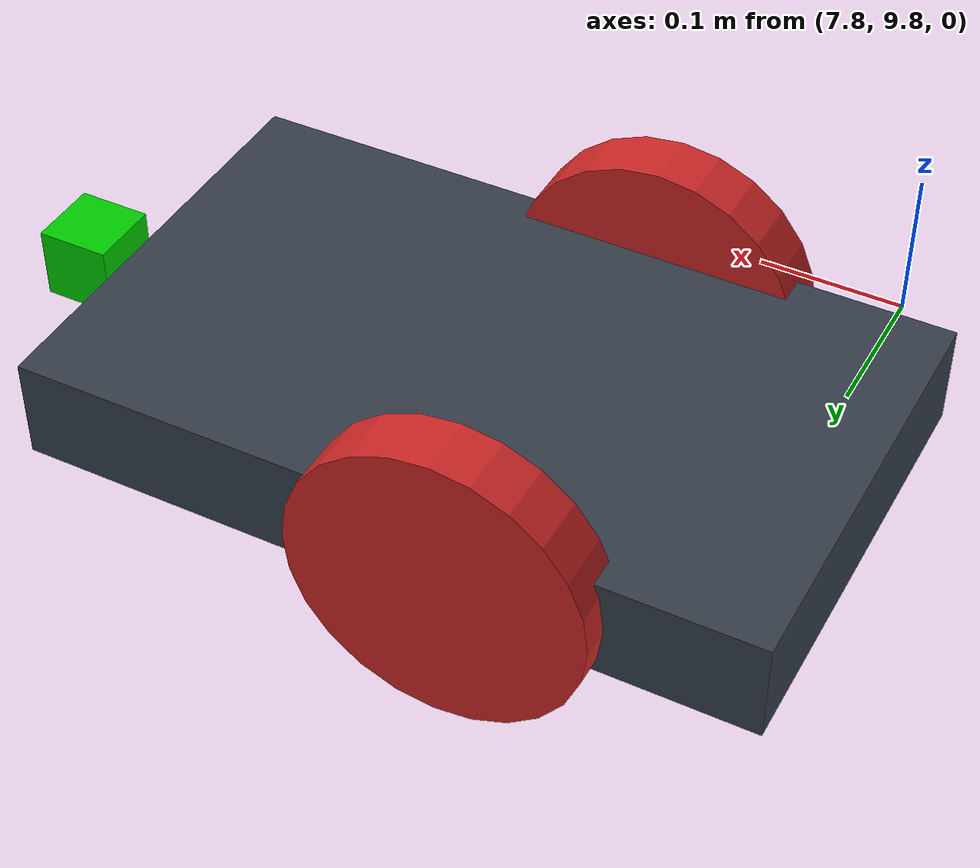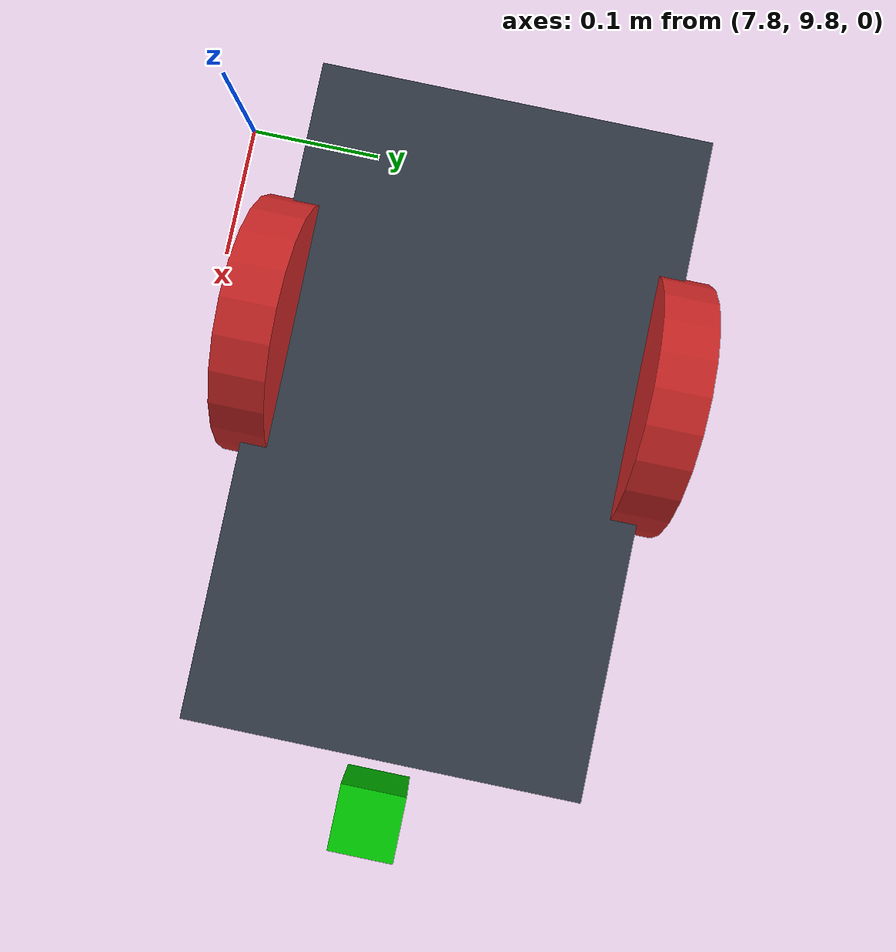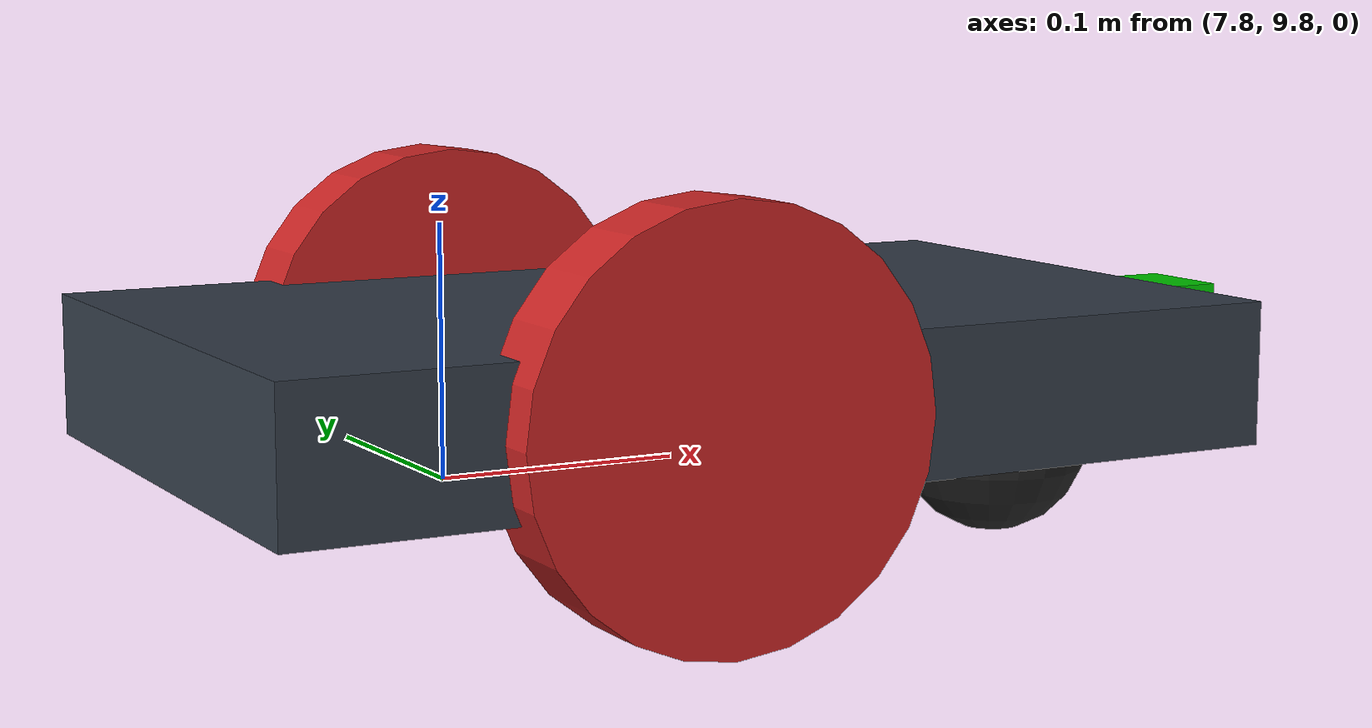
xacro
<?xml version="1.0" ?>

<robot name="follow" xmlns:xacro="https://www.ros.org/wiki/xacro" >
  <xacro:property name="cameraSize" value="0.05"/>
  <xacro:property name="cameraMass" value="0.1"/>

  <material name="black">
    <color rgba="0.0 0.0 0.0 1.0"/>
  </material>
  <material name="blue">
    <color rgba="0.203125 0.23828125 0.28515625 1.0"/>
  </material>
  <material name="green">
    <color rgba="0.0 0.8 0.0 1.0"/>
  </material>
  <material name="grey">
    <color rgba="0.2 0.2 0.2 1.0"/>
  </material>
  <material name="orange">
    <color rgba="1.0 0.423529411765 0.0392156862745 1.0"/>
  </material>
  <material name="brown">
    <color rgba="0.870588235294 0.811764705882 0.764705882353 1.0"/>
  </material>
  <material name="red">
    <color rgba="0.80078125 0.12890625 0.1328125 1.0"/>
  </material>
  <material name="white">
    <color rgba="1.0 1.0 1.0 1.0"/>
  </material>

  <gazebo reference="link_chassis">
    <material>Gazebo/black</material>
  </gazebo>
  <gazebo reference="link_left_wheel">
    <material>Gazebo/Red</material>
  </gazebo>
  <gazebo reference="link_right_wheel">
    <material>Gazebo/Red</material>
  </gazebo>

  <link name="link_chassis">
    <!-- pose and inertial -->
    <pose>0 0 0.1 0 0 0</pose>

    <inertial>
      <mass value="5"/>
      <origin rpy="0 0 0" xyz="8 10 0.1"/>
      <inertia ixx="0.0395416666667" ixy="0" ixz="0" iyy="0.106208333333" iyz="0" izz="0.106208333333"/>
    </inertial>

    <collision name="collision_chassis">
      <geometry>
        <box size="0.5 0.3 0.07"/>
      </geometry>
    </collision>

    <visual>
      <origin rpy="0 0 0" xyz="8 10 0.0"/>
      <geometry>
        <box size="0.5 0.3 0.07"/>
      </geometry>
      <material name="blue"/>
    </visual>

    <!-- caster front -->
    <collision name="caster_front_collision">
      <origin rpy=" 0 0 0" xyz="8.35 10 -0.05"/>
      <geometry>
        <sphere radius="0.05"/>
      </geometry>
      <surface>
        <friction>
          <ode>
            <mu>0</mu>
            <mu2>0</mu2>
            <slip1>1.0</slip1>
            <slip2>1.0</slip2>
          </ode>
        </friction>
      </surface>
    </collision>
    <visual name="caster_front_visual">
      <origin rpy=" 0 0 0" xyz="8.2 10 -0.05"/>
      <geometry>
        <sphere radius="0.05"/>
      </geometry>
    </visual>
    </link>

  <!-- Create wheel right -->

  <link name="link_right_wheel">
    <inertial>
      <mass value="0.2"/>
      <origin rpy="0 1.5707 1.5707" xyz="0 0 0"/>
      <inertia ixx="0.00052666666" ixy="0" ixz="0" iyy="0.00052666666" iyz="0" izz="0.001"/>
    </inertial>

    <collision name="link_right_wheel_collision">
      <origin rpy="0 1.5707 1.5707" xyz="0 0 0" />
      <geometry>
        <cylinder length="0.04" radius="0.1"/>
      </geometry>
    </collision>

    <visual name="link_right_wheel_visual">
      <origin rpy="0 1.5707 1.5707" xyz="0 0 0"/>
      <geometry>
        <cylinder length="0.04" radius="0.1"/>
      </geometry>
    </visual>

  </link>

  <!--   Joint for right wheel  -->
  <joint name="joint_right_wheel" type="continuous">
    <origin rpy="0 0 0" xyz="7.95 10.15 0"/>
    <child link="link_right_wheel" />
    <parent link="link_chassis"/>
    <axis rpy="0 0 0" xyz="0 1 0"/>
    <limit effort="10000" velocity="1000"/>
    <joint_properties damping="1.0" friction="1.0" />
  </joint>

  <!-- Left Wheel link -->

  <link name="link_left_wheel">
    <inertial>
      <mass value="0.2"/>
      <origin rpy="0 1.5707 1.5707" xyz="0 0 0"/>
      <inertia ixx="0.00052666666" ixy="0" ixz="0" iyy="0.00052666666" iyz="0" izz="0.001"/>
    </inertial>

    <collision name="link_left_wheel_collision">
      <origin rpy="0 1.5707 1.5707" xyz="0 0 0" />
      <geometry>
        <cylinder length="0.04" radius="0.1"/>
      </geometry>
    </collision>

    <visual name="link_left_wheel_visual">
      <origin rpy="0 1.5707 1.5707" xyz="0 0 0"/>
      <geometry>
        <cylinder length="0.04" radius="0.1"/>
      </geometry>
    </visual>

  </link>

  <!--   Joint for right wheel  -->
  <joint name="joint_left_wheel" type="continuous">
    <origin rpy="0 0 0" xyz="7.95 9.85 0"/>
    <child link="link_left_wheel" />
    <parent link="link_chassis"/>
    <axis rpy="0 0 0" xyz="0 1 0"/>
    <limit effort="10000" velocity="1000"/>
    <joint_properties damping="1.0" friction="1.0" />
  </joint>

  <gazebo>
    <plugin filename="libgazebo_ros_diff_drive.so" name="differential_drive_controller">
      <alwaysOn>true</alwaysOn>
      <updateRate>20</updateRate>
      <leftJoint>joint_left_wheel</leftJoint>
      <rightJoint>joint_right_wheel</rightJoint>
      <wheelSeparation>0.4</wheelSeparation>
      <wheelDiameter>0.2</wheelDiameter>
      <torque>0.1</torque>
      <commandTopic>cmd_vel1</commandTopic>
      <odometryTopic>odom1</odometryTopic>
      <odometryFrame>odom1</odometryFrame>
      <robotBaseFrame>link_chassis</robotBaseFrame>
    </plugin>
  </gazebo>

  <link name="camera">
    <collision>
      <origin xyz="0 0 0" rpy="0 0 0"/>
      <geometry>
        <box size="${cameraSize} ${cameraSize} ${cameraSize}"/>
      </geometry>
    </collision>

    <visual>
      <origin xyz="0 0 0" rpy="0 0 0"/>
      <geometry>
        <box size="${cameraSize} ${cameraSize} ${cameraSize}"/>
      </geometry>
      <material name="green"/>
    </visual>

    <inertial>
      <mass value="${cameraMass}" />
      <origin xyz="0 0 0" rpy="0 0 0"/>
      <box_inertia m="${cameraMass}" x="${cameraSize}" y="${cameraSize}" z="${cameraSize}" />
      <inertia ixx="1e-6" ixy="0" ixz="0" iyy="1e-6" iyz="0" izz="1e-6" />
    </inertial>
  </link>

  <joint name="camera_joint" type="fixed">
    <axis xyz="1 0.0 0.0" />
    <origin xyz="8.3 10.0 0" rpy="0 0 0"/>
    <parent link="link_chassis"/>
    <child link="camera"/>
  </joint>

  <gazebo reference="camera">
    <material>Gazebo/Green</material>
    <sensor type="camera" name="camera1">
      <update_rate>30.0</update_rate>
      <camera name="head">
        <horizontal_fov>1.3962634</horizontal_fov>
        <image>
          <width>800</width>
          <height>800</height>
          <format>R8G8B8</format>
        </image>
        <clip>
          <near>0.02</near>
          <far>300</far>
        </clip>
  <save enabled="true">
      <path>mybot_gazebo/Images</path>
    </save>
      </camera>
      <plugin name="camera_controller" filename="libgazebo_ros_camera.so">
        <alwaysOn>true</alwaysOn>
        <updateRate>0.0</updateRate>
        <cameraName>mybot/camera2</cameraName>
        <imageTopicName>image_raw</imageTopicName>
        <cameraInfoTopicName>camera_info</cameraInfoTopicName>
        <frameName>camera</frameName>
        <hackBaseline>0.07</hackBaseline>
        <distortionK1>0.0</distortionK1>
        <distortionK2>0.0</distortionK2>
        <distortionK3>0.0</distortionK3>
        <distortionT1>0.0</distortionT1>
        <distortionT2>0.0</distortionT2>
      </plugin>
    </sensor>
  </gazebo>

</robot>
